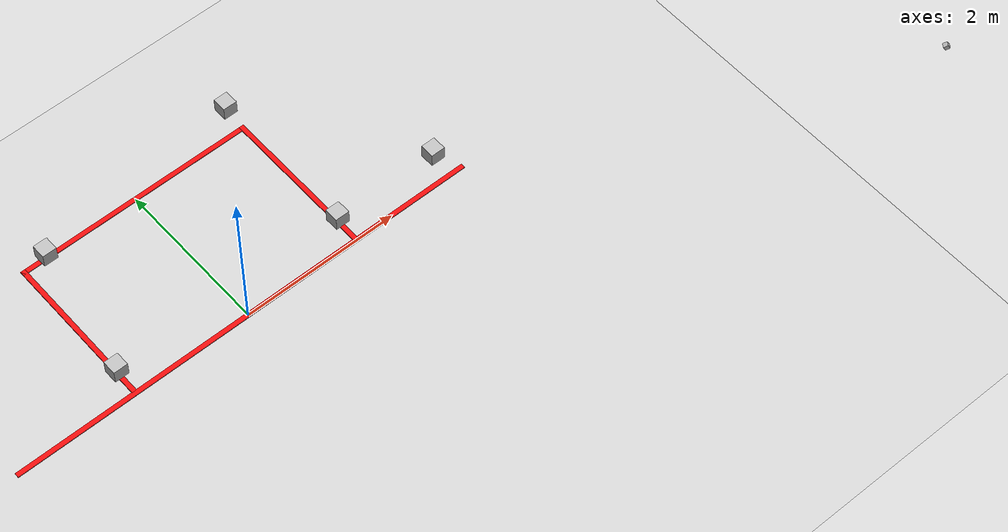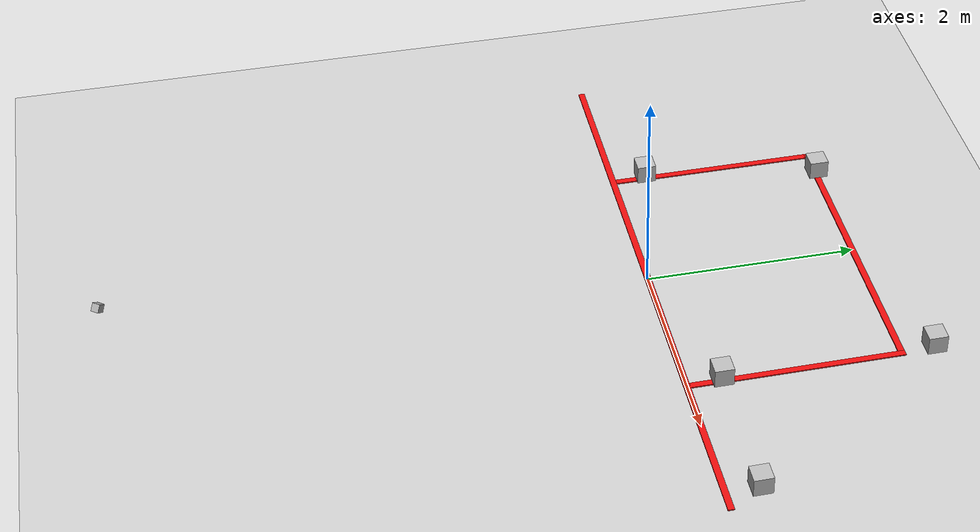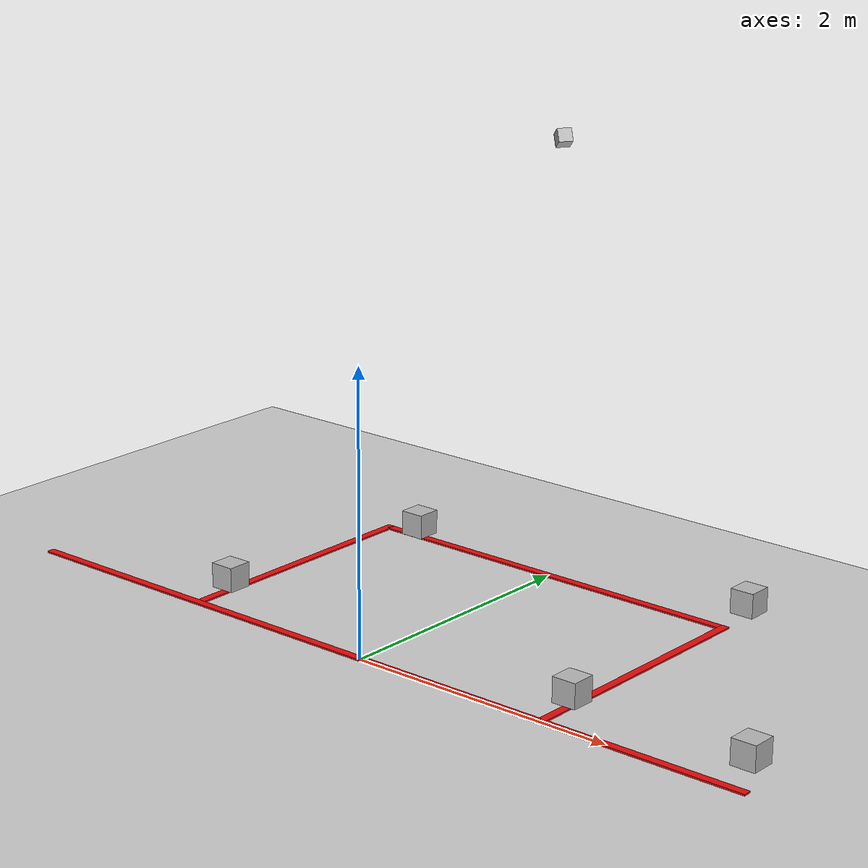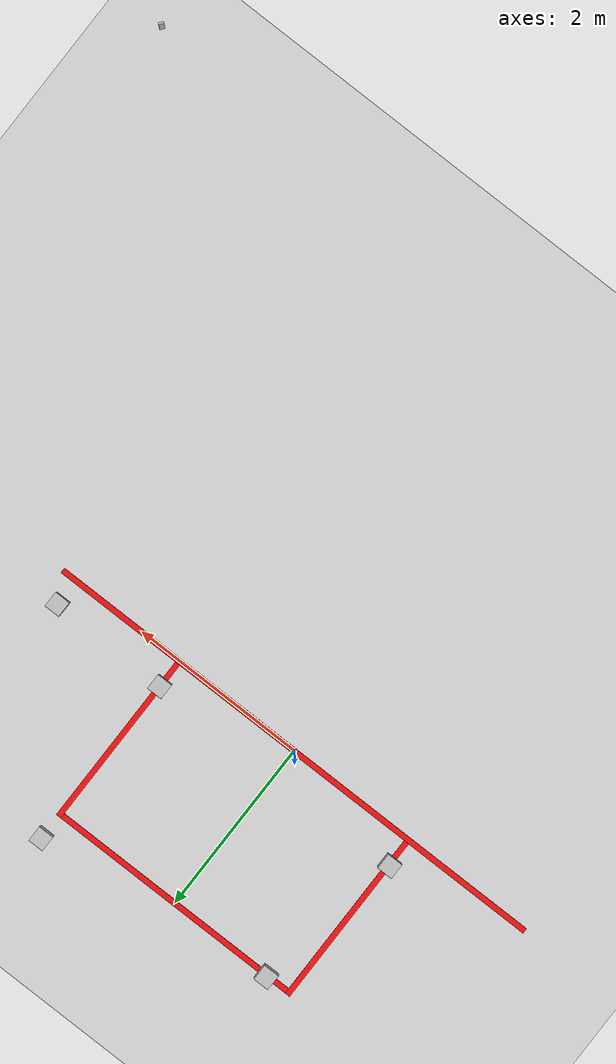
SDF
<sdf version="1.6">
 <world name="wheeltec_line_follow">
  <include><uri>model://ground_plane</uri></include>
  <include><uri>model://sun</uri></include>
  <model name="track_line">
   <static>true</static>
   <link name="link">
    <visual name="seg_main">
     <pose>0 0 0.006 0 0 0</pose>
     <geometry><box><size>6.06 0.06 0.012</size></box></geometry>
     <material><ambient>0.9 0.05 0.05 1</ambient><diffuse>0.9 0.05 0.05 1</diffuse></material>
    </visual>
    <visual name="seg_left">
     <pose>-1.5 1.0 0.006 0 0 0</pose>
     <geometry><box><size>0.06 2.06 0.012</size></box></geometry>
     <material><ambient>0.9 0.05 0.05 1</ambient><diffuse>0.9 0.05 0.05 1</diffuse></material>
    </visual>
    <visual name="seg_right">
     <pose>1.5 1.0 0.006 0 0 0</pose>
     <geometry><box><size>0.06 2.06 0.012</size></box></geometry>
     <material><ambient>0.9 0.05 0.05 1</ambient><diffuse>0.9 0.05 0.05 1</diffuse></material>
    </visual>
    <visual name="seg_top">
     <pose>0 2.0 0.006 0 0 0</pose>
     <geometry><box><size>3.06 0.06 0.012</size></box></geometry>
     <material><ambient>0.9 0.05 0.05 1</ambient><diffuse>0.9 0.05 0.05 1</diffuse></material>
    </visual>
   </link>
  </model>
  <include><name>qr_A_left</name><uri>model://qr_left</uri><pose>-1.5 0.32 0 0 0 0</pose></include>
  <include><name>qr_TL_right</name><uri>model://qr_right</uri><pose>-1.2 2.0 0 0 0 0</pose></include>
  <include><name>qr_TR_right</name><uri>model://qr_right</uri><pose>1.5 2.3 0 0 0 0</pose></include>
  <include><name>qr_B_left</name><uri>model://qr_left</uri><pose>1.5 0.32 0 0 0 0</pose></include>
  <include><name>qr_end_stop</name><uri>model://qr_stop</uri><pose>2.85 0.30 0 0 0 0</pose></include>
  <model name="scene_camera">
   <static>true</static>
   <pose>5.0 -4.5 4.8 0 0.6 2.5</pose>
   <link name="link">
    <visual name="vis"><geometry><box><size>0.05 0.05 0.05</size></box></geometry></visual>
    <sensor type="camera" name="scene_cam">
     <always_on>true</always_on>
     <update_rate>15</update_rate>
     <camera name="scene">
      <horizontal_fov>1.1</horizontal_fov>
      <image><width>960</width><height>540</height><format>R8G8B8</format></image>
      <clip><near>0.1</near><far>100</far></clip>
     </camera>
     <plugin name="scene_cam_controller" filename="libgazebo_ros_camera.so">
      <ros>
       <namespace>/sim_scene/chassis</namespace>
       <remapping>scene/image_raw:=image_raw</remapping>
       <remapping>scene/camera_info:=camera_info</remapping>
      </ros>
      <camera_name>scene</camera_name>
      <frame_name>scene_camera</frame_name>
     </plugin>
    </sensor>
   </link>
  </model>
  <physics name="default_physics" default="0" type="ode">
   <max_step_size>0.001</max_step_size>
   <real_time_factor>1.0</real_time_factor>
   <real_time_update_rate>1000</real_time_update_rate>
  </physics>
 </world>
</sdf>

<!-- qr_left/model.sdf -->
<!-- qr_left — 把 QR 码 PNG 贴到一个小立方体的各面, 立在巡线路口供车载相机识别。
     纯视觉(无碰撞), 不挡车; 立方体四个侧面都贴同一张码, 任意朝向都能被看到。
     内容: path:left  原地左转直到重新发现线。 -->
<sdf version="1.6">
  <model name="qr_left">
    <static>true</static>
    <link name="link">
      <visual name="qr">
        <pose>0 0 0.12 0 0 0</pose>
        <geometry><box><size>0.18 0.18 0.18</size></box></geometry>
        <material>
          <script>
            <uri>model://qr_left/materials/scripts</uri>
            <uri>model://qr_left/materials/textures</uri>
            <name>QR/Left</name>
          </script>
        </material>
      </visual>
    </link>
  </model>
</sdf>

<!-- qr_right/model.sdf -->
<!-- qr_right — 把 QR 码 PNG 贴到一个小立方体的各面, 立在巡线路口供车载相机识别。
     纯视觉(无碰撞), 不挡车; 立方体四个侧面都贴同一张码, 任意朝向都能被看到。
     内容: path:right 原地右转直到重新发现线。 -->
<sdf version="1.6">
  <model name="qr_right">
    <static>true</static>
    <link name="link">
      <visual name="qr">
        <pose>0 0 0.12 0 0 0</pose>
        <geometry><box><size>0.18 0.18 0.18</size></box></geometry>
        <material>
          <script>
            <uri>model://qr_right/materials/scripts</uri>
            <uri>model://qr_right/materials/textures</uri>
            <name>QR/Right</name>
          </script>
        </material>
      </visual>
    </link>
  </model>
</sdf>

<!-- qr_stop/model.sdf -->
<!-- qr_stop — 把 QR 码 PNG 贴到一个小立方体的各面, 立在巡线路口供车载相机识别。
     纯视觉(无碰撞), 不挡车; 立方体四个侧面都贴同一张码, 任意朝向都能被看到。
     内容: path:stop 停车。 -->
<sdf version="1.6">
  <model name="qr_stop">
    <static>true</static>
    <link name="link">
      <visual name="qr">
        <pose>0 0 0.12 0 0 0</pose>
        <geometry><box><size>0.18 0.18 0.18</size></box></geometry>
        <material>
          <script>
            <uri>model://qr_stop/materials/scripts</uri>
            <uri>model://qr_stop/materials/textures</uri>
            <name>QR/Stop</name>
          </script>
        </material>
      </visual>
    </link>
  </model>
</sdf>
